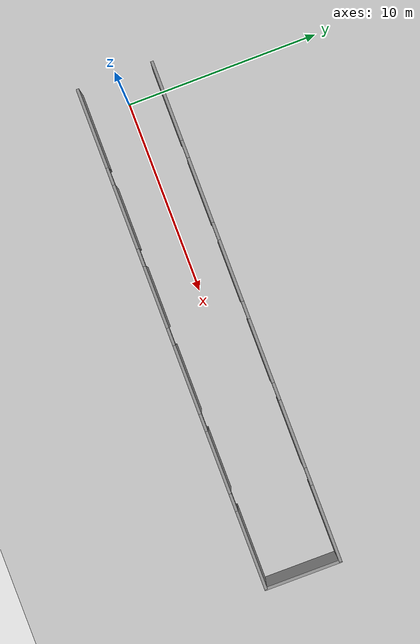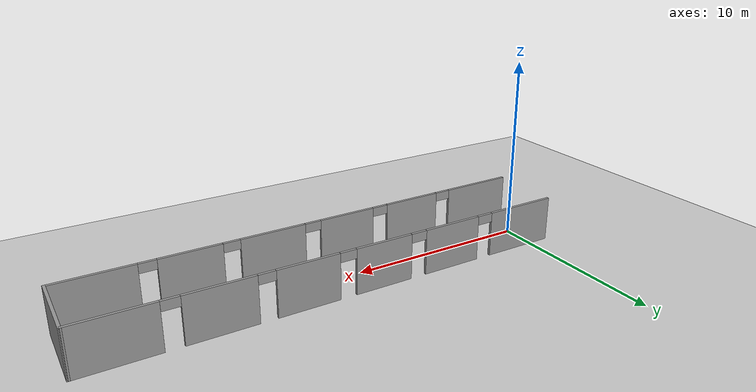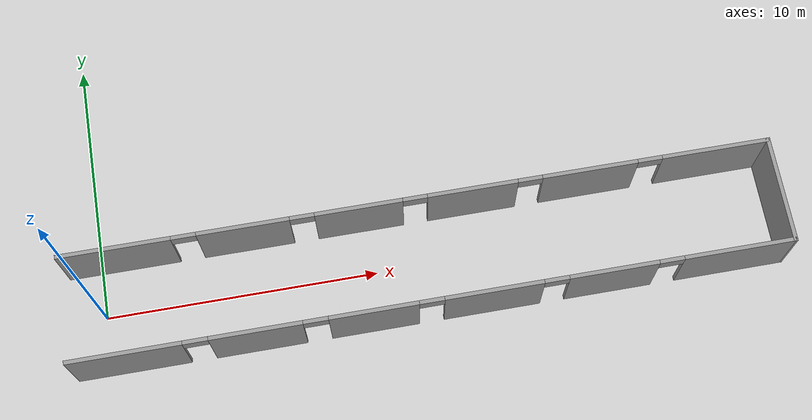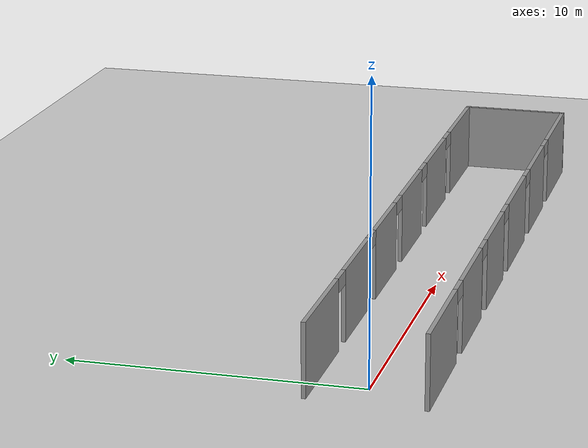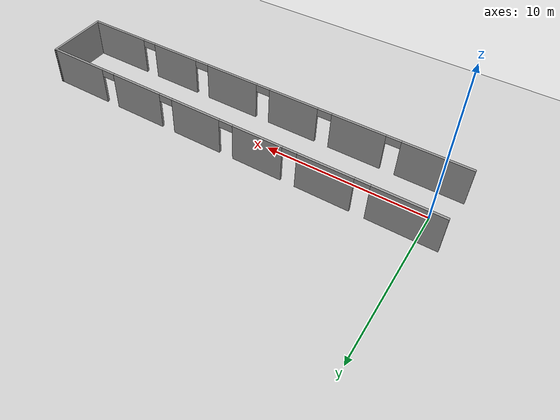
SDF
<sdf version="1.7">
 <world name="default">
  <light name="sun" type="directional">
   <pose>0 0 10 0 -0 0</pose>
   <diffuse>0.8 0.8 0.8 1</diffuse>
   <specular>0.2 0.2 0.2 1</specular>
   <attenuation>
    <range>1000</range>
    <constant>0.9</constant>
    <linear>0.01</linear>
    <quadratic>0.001</quadratic>
   </attenuation>
   <direction>-0.5 0.1 -0.9</direction>
   <spot><inner_angle>0</inner_angle><outer_angle>0</outer_angle><falloff>0</falloff></spot>
  </light>
  <model name="ground_plane">
   <static>1</static>
   <link name="link">
    <collision name="collision">
     <geometry><plane><normal>0 0 1</normal><size>100 100</size></plane></geometry>
     <surface><friction><ode><mu>100</mu><mu2>50</mu2></ode></friction></surface>
    </collision>
    <visual name="visual">
     <cast_shadows>0</cast_shadows>
     <geometry><plane><normal>0 0 1</normal><size>100 100</size></plane></geometry>
     <material>
      <script><uri>file://media/materials/scripts/gazebo.material</uri><name>Gazebo/Grey</name></script>
     </material>
    </visual>
   </link>
  </model>
  <gravity>0 0 -9.8</gravity>
  <magnetic_field>6e-06 2.3e-05 -4.2e-05</magnetic_field>
  <atmosphere type="adiabatic"/>
  <physics type="ode">
   <max_step_size>0.001</max_step_size>
   <real_time_factor>1</real_time_factor>
   <real_time_update_rate>1000</real_time_update_rate>
  </physics>
  <scene><ambient>0.4 0.4 0.4 1</ambient><background>0.7 0.7 0.7 1</background><shadows>1</shadows></scene>
  <spherical_coordinates>
   <surface_model>EARTH_WGS84</surface_model>
   <latitude_deg>0</latitude_deg>
   <longitude_deg>0</longitude_deg>
   <elevation>0</elevation>
   <heading_deg>0</heading_deg>
  </spherical_coordinates>
  <model name="test_map_01">
   <pose>11.8184 -0.144315 0 0 -0 0</pose>
   <link name="Wall_0">
    <pose>-0.02859 -1.93566 0 0 -0 0</pose>
    <visual name="Wall_0_Visual_0">
     <pose>-10.9664 0 1.25 0 -0 0</pose>
     <geometry><box><size>4.09834 0.15 2.5</size></box></geometry>
     <material>
      <script><uri>file://media/materials/scripts/gazebo.material</uri><name>Gazebo/Grey</name></script>
      <ambient>1 1 1 1</ambient>
     </material>
     <meta><layer>0</layer></meta>
    </visual>
    <collision name="Wall_0_Collision_0">
     <geometry><box><size>4.09834 0.15 2.5</size></box></geometry>
     <pose>-10.9664 0 1.25 0 -0 0</pose>
    </collision>
    <visual name="Wall_0_Visual_1">
     <pose>-6.35655 0 1.25 0 -0 0</pose>
     <geometry><box><size>3.32145 0.15 2.5</size></box></geometry>
     <material>
      <script><uri>file://media/materials/scripts/gazebo.material</uri><name>Gazebo/Grey</name></script>
      <ambient>1 1 1 1</ambient>
     </material>
     <meta><layer>0</layer></meta>
    </visual>
    <collision name="Wall_0_Collision_1">
     <geometry><box><size>3.32145 0.15 2.5</size></box></geometry>
     <pose>-6.35655 0 1.25 0 -0 0</pose>
    </collision>
    <visual name="Wall_0_Visual_2">
     <pose>-2.18786 0 1.25 0 -0 0</pose>
     <geometry><box><size>3.21591 0.15 2.5</size></box></geometry>
     <material>
      <script><uri>file://media/materials/scripts/gazebo.material</uri><name>Gazebo/Grey</name></script>
      <ambient>1 1 1 1</ambient>
     </material>
     <meta><layer>0</layer></meta>
    </visual>
    <collision name="Wall_0_Collision_2">
     <geometry><box><size>3.21591 0.15 2.5</size></box></geometry>
     <pose>-2.18786 0 1.25 0 -0 0</pose>
    </collision>
    <visual name="Wall_0_Visual_3">
     <pose>2.10394 0 1.25 0 -0 0</pose>
     <geometry><box><size>3.5677 0.15 2.5</size></box></geometry>
     <material>
      <script><uri>file://media/materials/scripts/gazebo.material</uri><name>Gazebo/Grey</name></script>
      <ambient>1 1 1 1</ambient>
     </material>
     <meta><layer>0</layer></meta>
    </visual>
    <collision name="Wall_0_Collision_3">
     <geometry><box><size>3.5677 0.15 2.5</size></box></geometry>
     <pose>2.10394 0 1.25 0 -0 0</pose>
    </collision>
    <visual name="Wall_0_Visual_4">
     <pose>6.41334 0 1.25 0 -0 0</pose>
     <geometry><box><size>3.25109 0.15 2.5</size></box></geometry>
     <material>
      <script><uri>file://media/materials/scripts/gazebo.material</uri><name>Gazebo/Grey</name></script>
      <ambient>1 1 1 1</ambient>
     </material>
     <meta><layer>0</layer></meta>
    </visual>
    <collision name="Wall_0_Collision_4">
     <geometry><box><size>3.25109 0.15 2.5</size></box></geometry>
     <pose>6.41334 0 1.25 0 -0 0</pose>
    </collision>
    <visual name="Wall_0_Visual_5">
     <pose>10.9773 0 1.25 0 -0 0</pose>
     <geometry><box><size>4.07673 0.15 2.5</size></box></geometry>
     <material>
      <script><uri>file://media/materials/scripts/gazebo.material</uri><name>Gazebo/Grey</name></script>
      <ambient>1 1 1 1</ambient>
     </material>
     <meta><layer>0</layer></meta>
    </visual>
    <collision name="Wall_0_Collision_5">
     <geometry><box><size>4.07673 0.15 2.5</size></box></geometry>
     <pose>10.9773 0 1.25 0 -0 0</pose>
    </collision>
    <visual name="Wall_0_Visual_6">
     <pose>-8.46728 0 2.25 0 -0 0</pose>
     <geometry><box><size>0.9 0.15 0.5</size></box></geometry>
     <material>
      <script><uri>file://media/materials/scripts/gazebo.material</uri><name>Gazebo/Grey</name></script>
      <ambient>1 1 1 1</ambient>
     </material>
     <meta><layer>0</layer></meta>
    </visual>
    <collision name="Wall_0_Collision_6">
     <geometry><box><size>0.9 0.15 0.5</size></box></geometry>
     <pose>-8.46728 0 2.25 0 -0 0</pose>
    </collision>
    <visual name="Wall_0_Visual_7">
     <pose>-4.24582 0 2.25 0 -0 0</pose>
     <geometry><box><size>0.9 0.15 0.5</size></box></geometry>
     <material>
      <script><uri>file://media/materials/scripts/gazebo.material</uri><name>Gazebo/Grey</name></script>
      <ambient>1 1 1 1</ambient>
     </material>
     <meta><layer>0</layer></meta>
    </visual>
    <collision name="Wall_0_Collision_7">
     <geometry><box><size>0.9 0.15 0.5</size></box></geometry>
     <pose>-4.24582 0 2.25 0 -0 0</pose>
    </collision>
    <visual name="Wall_0_Visual_8">
     <pose>-0.129908 0 2.25 0 -0 0</pose>
     <geometry><box><size>0.9 0.15 0.5</size></box></geometry>
     <material>
      <script><uri>file://media/materials/scripts/gazebo.material</uri><name>Gazebo/Grey</name></script>
      <ambient>1 1 1 1</ambient>
     </material>
     <meta><layer>0</layer></meta>
    </visual>
    <collision name="Wall_0_Collision_8">
     <geometry><box><size>0.9 0.15 0.5</size></box></geometry>
     <pose>-0.129908 0 2.25 0 -0 0</pose>
    </collision>
    <visual name="Wall_0_Visual_9">
     <pose>4.33779 0 2.25 0 -0 0</pose>
     <geometry><box><size>0.9 0.15 0.5</size></box></geometry>
     <material>
      <script><uri>file://media/materials/scripts/gazebo.material</uri><name>Gazebo/Grey</name></script>
      <ambient>1 1 1 1</ambient>
     </material>
     <meta><layer>0</layer></meta>
    </visual>
    <collision name="Wall_0_Collision_9">
     <geometry><box><size>0.9 0.15 0.5</size></box></geometry>
     <pose>4.33779 0 2.25 0 -0 0</pose>
    </collision>
    <visual name="Wall_0_Visual_10">
     <pose>8.48889 0 2.25 0 -0 0</pose>
     <geometry><box><size>0.9 0.15 0.5</size></box></geometry>
     <material>
      <script><uri>file://media/materials/scripts/gazebo.material</uri><name>Gazebo/Grey</name></script>
      <ambient>1 1 1 1</ambient>
     </material>
     <meta><layer>0</layer></meta>
    </visual>
    <collision name="Wall_0_Collision_10">
     <geometry><box><size>0.9 0.15 0.5</size></box></geometry>
     <pose>8.48889 0 2.25 0 -0 0</pose>
    </collision>
   </link>
   <link name="Wall_8">
    <pose>-0.012183 1.93566 0 0 -0 0</pose>
    <visual name="Wall_8_Visual_0">
     <pose>-10.9571 0 1.25 0 -0 0</pose>
     <geometry><box><size>4.11711 0.15 2.5</size></box></geometry>
     <material>
      <script><uri>file://media/materials/scripts/gazebo.material</uri><name>Gazebo/Grey</name></script>
      <ambient>1 1 1 1</ambient>
     </material>
     <meta><layer>0</layer></meta>
    </visual>
    <collision name="Wall_8_Collision_0">
     <geometry><box><size>4.11711 0.15 2.5</size></box></geometry>
     <pose>-10.9571 0 1.25 0 -0 0</pose>
    </collision>
    <visual name="Wall_8_Visual_1">
     <pose>-6.31783 0 1.25 0 -0 0</pose>
     <geometry><box><size>3.36136 0.15 2.5</size></box></geometry>
     <material>
      <script><uri>file://media/materials/scripts/gazebo.material</uri><name>Gazebo/Grey</name></script>
      <ambient>1 1 1 1</ambient>
     </material>
     <meta><layer>0</layer></meta>
    </visual>
    <collision name="Wall_8_Collision_1">
     <geometry><box><size>3.36136 0.15 2.5</size></box></geometry>
     <pose>-6.31783 0 1.25 0 -0 0</pose>
    </collision>
    <visual name="Wall_8_Visual_2">
     <pose>-2.13155 0 1.25 0 -0 0</pose>
     <geometry><box><size>3.21119 0.15 2.5</size></box></geometry>
     <material>
      <script><uri>file://media/materials/scripts/gazebo.material</uri><name>Gazebo/Grey</name></script>
      <ambient>1 1 1 1</ambient>
     </material>
     <meta><layer>0</layer></meta>
    </visual>
    <collision name="Wall_8_Collision_2">
     <geometry><box><size>3.21119 0.15 2.5</size></box></geometry>
     <pose>-2.13155 0 1.25 0 -0 0</pose>
    </collision>
    <visual name="Wall_8_Visual_3">
     <pose>2.03631 0 1.25 0 -0 0</pose>
     <geometry><box><size>3.32453 0.15 2.5</size></box></geometry>
     <material>
      <script><uri>file://media/materials/scripts/gazebo.material</uri><name>Gazebo/Grey</name></script>
      <ambient>1 1 1 1</ambient>
     </material>
     <meta><layer>0</layer></meta>
    </visual>
    <collision name="Wall_8_Collision_3">
     <geometry><box><size>3.32453 0.15 2.5</size></box></geometry>
     <pose>2.03631 0 1.25 0 -0 0</pose>
    </collision>
    <visual name="Wall_8_Visual_4">
     <pose>6.36329 0 1.25 0 -0 0</pose>
     <geometry><box><size>3.52945 0.15 2.5</size></box></geometry>
     <material>
      <script><uri>file://media/materials/scripts/gazebo.material</uri><name>Gazebo/Grey</name></script>
      <ambient>1 1 1 1</ambient>
     </material>
     <meta><layer>0</layer></meta>
    </visual>
    <collision name="Wall_8_Collision_4">
     <geometry><box><size>3.52945 0.15 2.5</size></box></geometry>
     <pose>6.36329 0 1.25 0 -0 0</pose>
    </collision>
    <visual name="Wall_8_Visual_5">
     <pose>11.0218 0 1.25 0 -0 0</pose>
     <geometry><box><size>3.9876 0.15 2.5</size></box></geometry>
     <material>
      <script><uri>file://media/materials/scripts/gazebo.material</uri><name>Gazebo/Grey</name></script>
      <ambient>1 1 1 1</ambient>
     </material>
     <meta><layer>0</layer></meta>
    </visual>
    <collision name="Wall_8_Collision_5">
     <geometry><box><size>3.9876 0.15 2.5</size></box></geometry>
     <pose>11.0218 0 1.25 0 -0 0</pose>
    </collision>
    <visual name="Wall_8_Visual_6">
     <pose>-8.4485 0 2.25 0 -0 0</pose>
     <geometry><box><size>0.9 0.15 0.5</size></box></geometry>
     <material>
      <script><uri>file://media/materials/scripts/gazebo.material</uri><name>Gazebo/Grey</name></script>
      <ambient>1 1 1 1</ambient>
     </material>
     <meta><layer>0</layer></meta>
    </visual>
    <collision name="Wall_8_Collision_6">
     <geometry><box><size>0.9 0.15 0.5</size></box></geometry>
     <pose>-8.4485 0 2.25 0 -0 0</pose>
    </collision>
    <visual name="Wall_8_Visual_7">
     <pose>-4.18715 0 2.25 0 -0 0</pose>
     <geometry><box><size>0.9 0.15 0.5</size></box></geometry>
     <material>
      <script><uri>file://media/materials/scripts/gazebo.material</uri><name>Gazebo/Grey</name></script>
      <ambient>1 1 1 1</ambient>
     </material>
     <meta><layer>0</layer></meta>
    </visual>
    <collision name="Wall_8_Collision_7">
     <geometry><box><size>0.9 0.15 0.5</size></box></geometry>
     <pose>-4.18715 0 2.25 0 -0 0</pose>
    </collision>
    <visual name="Wall_8_Visual_8">
     <pose>-0.075957 0 2.25 0 -0 0</pose>
     <geometry><box><size>0.9 0.15 0.5</size></box></geometry>
     <material>
      <script><uri>file://media/materials/scripts/gazebo.material</uri><name>Gazebo/Grey</name></script>
      <ambient>1 1 1 1</ambient>
     </material>
     <meta><layer>0</layer></meta>
    </visual>
    <collision name="Wall_8_Collision_8">
     <geometry><box><size>0.9 0.15 0.5</size></box></geometry>
     <pose>-0.075957 0 2.25 0 -0 0</pose>
    </collision>
    <visual name="Wall_8_Visual_9">
     <pose>4.14857 0 2.25 0 -0 0</pose>
     <geometry><box><size>0.9 0.15 0.5</size></box></geometry>
     <material>
      <script><uri>file://media/materials/scripts/gazebo.material</uri><name>Gazebo/Grey</name></script>
      <ambient>1 1 1 1</ambient>
     </material>
     <meta><layer>0</layer></meta>
    </visual>
    <collision name="Wall_8_Collision_9">
     <geometry><box><size>0.9 0.15 0.5</size></box></geometry>
     <pose>4.14857 0 2.25 0 -0 0</pose>
    </collision>
    <visual name="Wall_8_Visual_10">
     <pose>8.57802 0 2.25 0 -0 0</pose>
     <geometry><box><size>0.9 0.15 0.5</size></box></geometry>
     <material>
      <script><uri>file://media/materials/scripts/gazebo.material</uri><name>Gazebo/Grey</name></script>
      <ambient>1 1 1 1</ambient>
     </material>
     <meta><layer>0</layer></meta>
    </visual>
    <collision name="Wall_8_Collision_10">
     <geometry><box><size>0.9 0.15 0.5</size></box></geometry>
     <pose>8.57802 0 2.25 0 -0 0</pose>
    </collision>
   </link>
   <link name="Wall_9">
    <collision name="Wall_9_Collision">
     <geometry><box><size>4.02136 0.15 2.5</size></box></geometry>
     <pose>0 0 1.25 0 -0 0</pose>
    </collision>
    <visual name="Wall_9_Visual">
     <pose>0 0 1.25 0 -0 0</pose>
     <geometry><box><size>4.02136 0.15 2.5</size></box></geometry>
     <material>
      <script><uri>file://media/materials/scripts/gazebo.material</uri><name>Gazebo/Grey</name></script>
      <ambient>1 1 1 1</ambient>
     </material>
     <meta><layer>0</layer></meta>
    </visual>
    <pose>12.9607 0 0 0 -0 -1.57503</pose>
   </link>
   <static>1</static>
  </model>
 </world>
</sdf>
